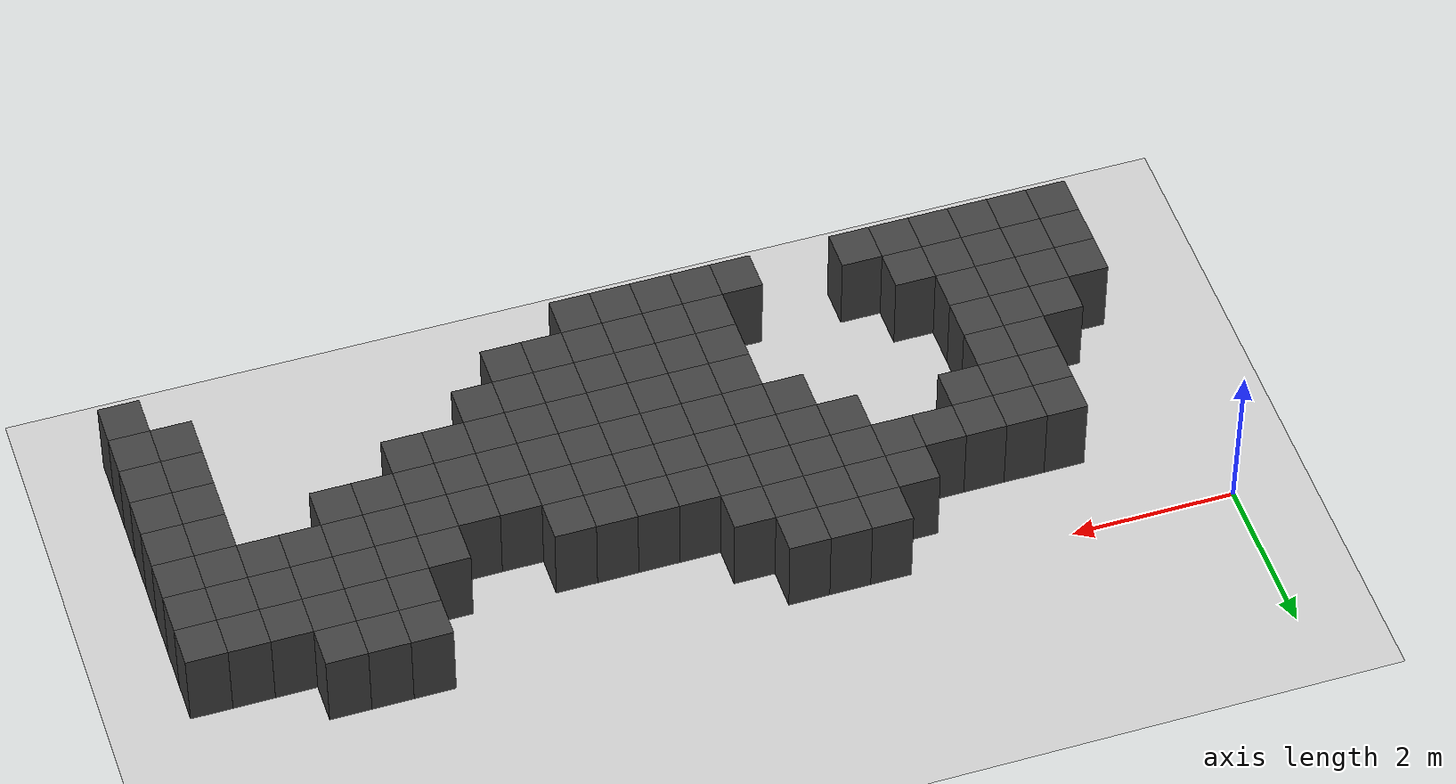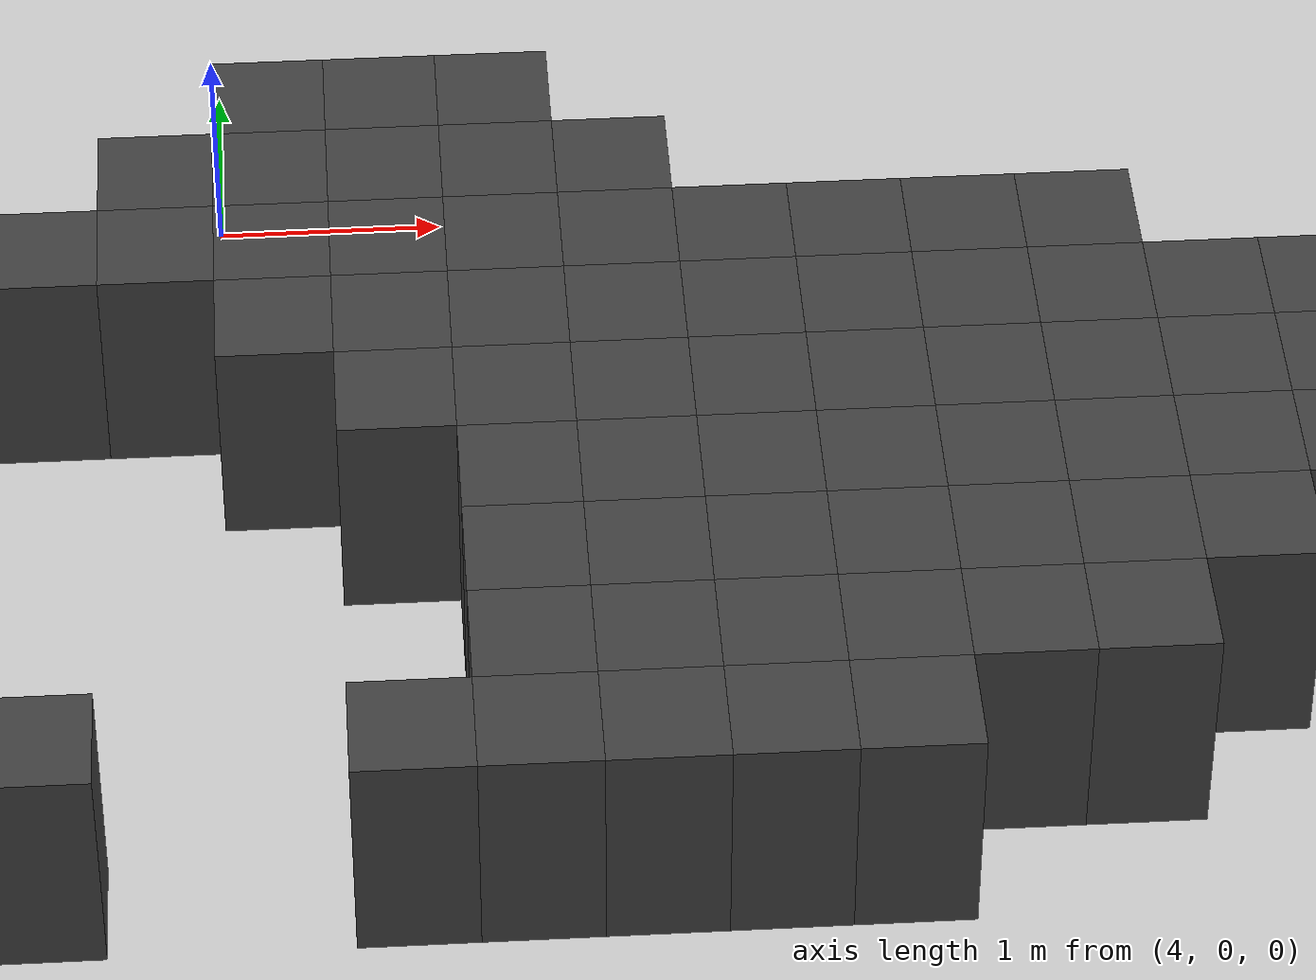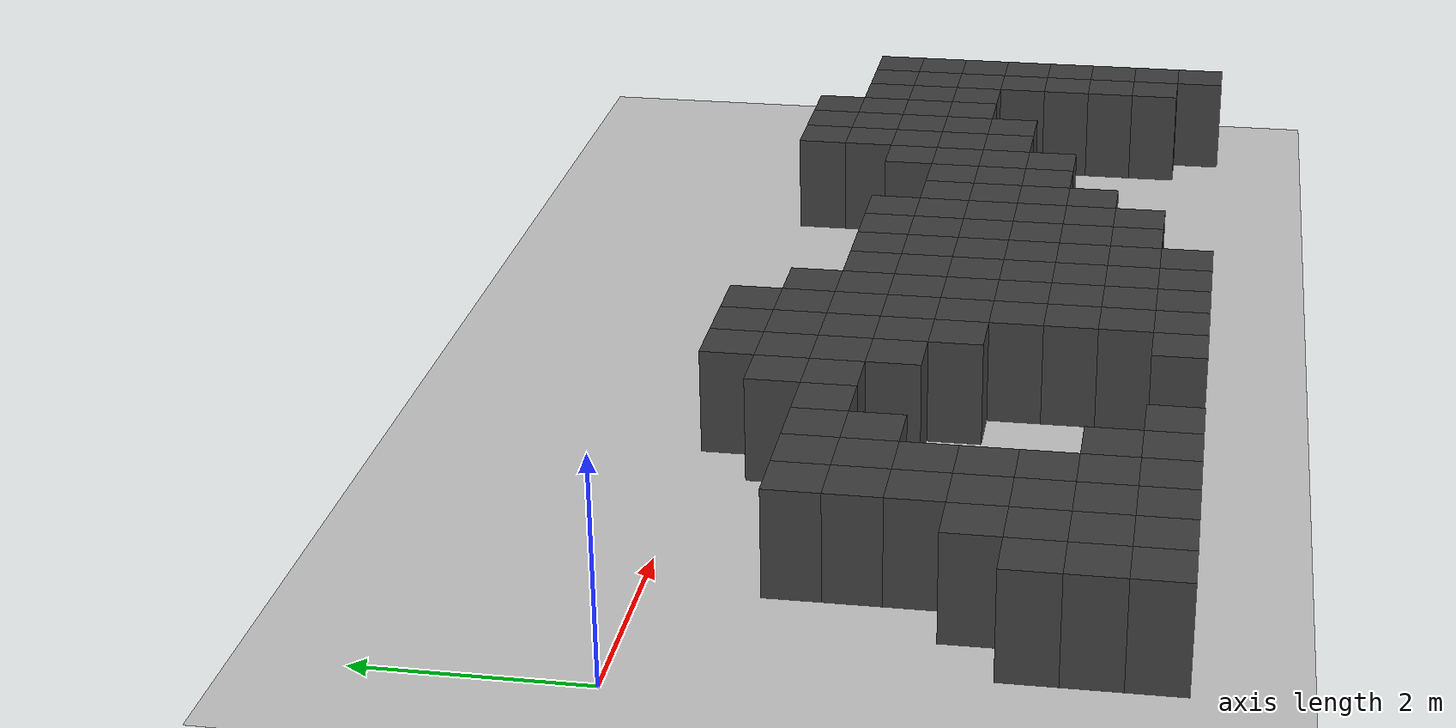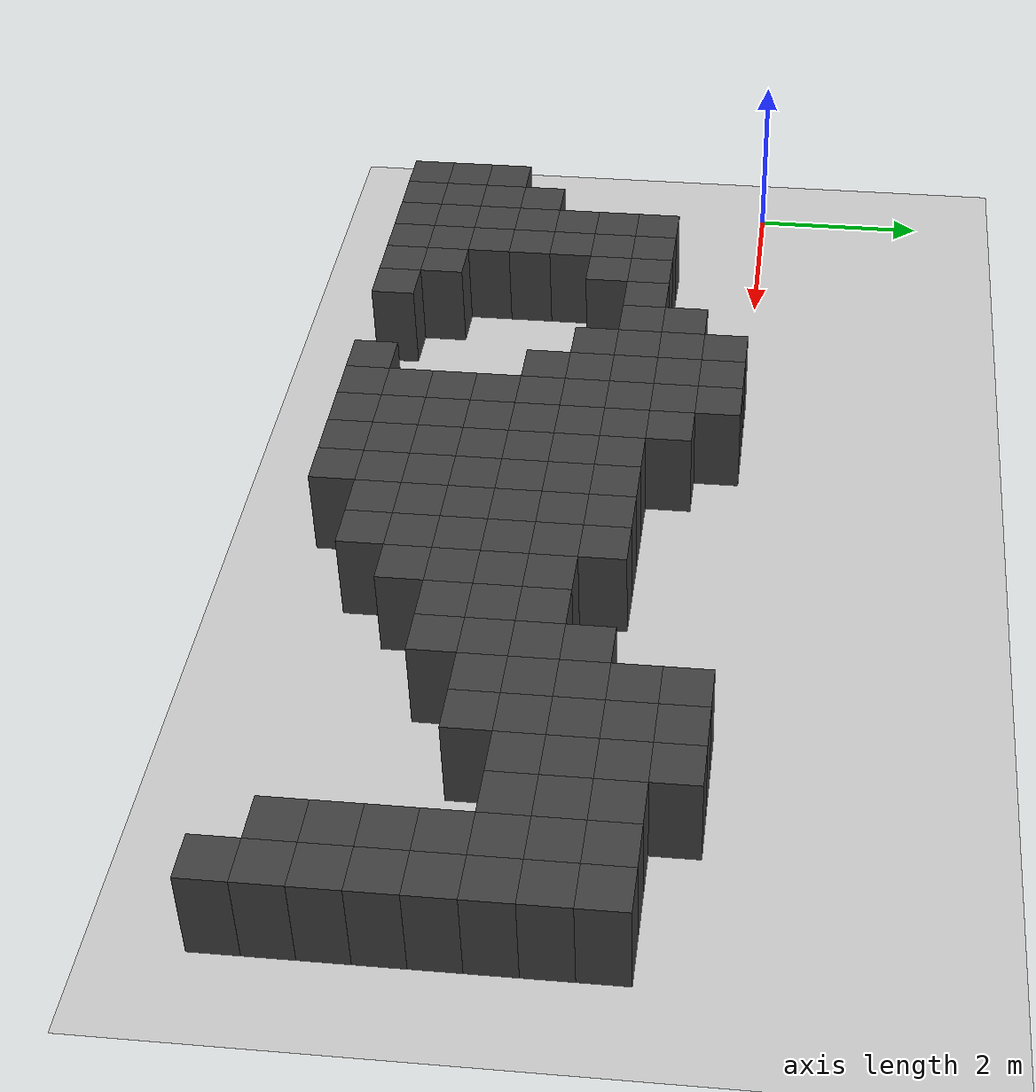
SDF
<sdf version="1.7">
 <world name="map_9687">
  <model name="ground_plane">
   <static>true</static>
   <link name="link">
    <collision name="collision">
     <geometry><plane><normal>0 0 1</normal><size>200 200</size></plane></geometry>
    </collision>
    <visual name="visual">
     <geometry><plane><normal>0 0 1</normal><size>200 200</size></plane></geometry>
     <material><ambient>0.8 0.8 0.8 1</ambient><diffuse>0.8 0.8 0.8 1</diffuse></material>
    </visual>
   </link>
  </model>
  <model name="maze_environment">
   <static>true</static>
   <link name="wall_449">
    <pose>4.250 -0.250 0.500 0 0 0</pose>
    <collision name="col"><geometry><box><size>0.5 0.5 1.0</size></box></geometry></collision>
    <visual name="vis">
     <geometry><box><size>0.5 0.5 1.0</size></box></geometry>
     <material><ambient>0.15 0.15 0.15 1</ambient><diffuse>0.25 0.25 0.25 1</diffuse></material>
    </visual>
   </link>
   <link name="wall_450">
    <pose>4.750 -0.250 0.500 0 0 0</pose>
    <collision name="col"><geometry><box><size>0.5 0.5 1.0</size></box></geometry></collision>
    <visual name="vis">
     <geometry><box><size>0.5 0.5 1.0</size></box></geometry>
     <material><ambient>0.15 0.15 0.15 1</ambient><diffuse>0.25 0.25 0.25 1</diffuse></material>
    </visual>
   </link>
   <link name="wall_451">
    <pose>5.250 -0.250 0.500 0 0 0</pose>
    <collision name="col"><geometry><box><size>0.5 0.5 1.0</size></box></geometry></collision>
    <visual name="vis">
     <geometry><box><size>0.5 0.5 1.0</size></box></geometry>
     <material><ambient>0.15 0.15 0.15 1</ambient><diffuse>0.25 0.25 0.25 1</diffuse></material>
    </visual>
   </link>
   <link name="wall_452">
    <pose>9.750 -0.250 0.500 0 0 0</pose>
    <collision name="col"><geometry><box><size>0.5 0.5 1.0</size></box></geometry></collision>
    <visual name="vis">
     <geometry><box><size>0.5 0.5 1.0</size></box></geometry>
     <material><ambient>0.15 0.15 0.15 1</ambient><diffuse>0.25 0.25 0.25 1</diffuse></material>
    </visual>
   </link>
   <link name="wall_453">
    <pose>10.250 -0.250 0.500 0 0 0</pose>
    <collision name="col"><geometry><box><size>0.5 0.5 1.0</size></box></geometry></collision>
    <visual name="vis">
     <geometry><box><size>0.5 0.5 1.0</size></box></geometry>
     <material><ambient>0.15 0.15 0.15 1</ambient><diffuse>0.25 0.25 0.25 1</diffuse></material>
    </visual>
   </link>
   <link name="wall_454">
    <pose>10.750 -0.250 0.500 0 0 0</pose>
    <collision name="col"><geometry><box><size>0.5 0.5 1.0</size></box></geometry></collision>
    <visual name="vis">
     <geometry><box><size>0.5 0.5 1.0</size></box></geometry>
     <material><ambient>0.15 0.15 0.15 1</ambient><diffuse>0.25 0.25 0.25 1</diffuse></material>
    </visual>
   </link>
   <link name="wall_471">
    <pose>3.750 -0.750 0.500 0 0 0</pose>
    <collision name="col"><geometry><box><size>0.5 0.5 1.0</size></box></geometry></collision>
    <visual name="vis">
     <geometry><box><size>0.5 0.5 1.0</size></box></geometry>
     <material><ambient>0.15 0.15 0.15 1</ambient><diffuse>0.25 0.25 0.25 1</diffuse></material>
    </visual>
   </link>
   <link name="wall_472">
    <pose>4.250 -0.750 0.500 0 0 0</pose>
    <collision name="col"><geometry><box><size>0.5 0.5 1.0</size></box></geometry></collision>
    <visual name="vis">
     <geometry><box><size>0.5 0.5 1.0</size></box></geometry>
     <material><ambient>0.15 0.15 0.15 1</ambient><diffuse>0.25 0.25 0.25 1</diffuse></material>
    </visual>
   </link>
   <link name="wall_473">
    <pose>4.750 -0.750 0.500 0 0 0</pose>
    <collision name="col"><geometry><box><size>0.5 0.5 1.0</size></box></geometry></collision>
    <visual name="vis">
     <geometry><box><size>0.5 0.5 1.0</size></box></geometry>
     <material><ambient>0.15 0.15 0.15 1</ambient><diffuse>0.25 0.25 0.25 1</diffuse></material>
    </visual>
   </link>
   <link name="wall_474">
    <pose>5.250 -0.750 0.500 0 0 0</pose>
    <collision name="col"><geometry><box><size>0.5 0.5 1.0</size></box></geometry></collision>
    <visual name="vis">
     <geometry><box><size>0.5 0.5 1.0</size></box></geometry>
     <material><ambient>0.15 0.15 0.15 1</ambient><diffuse>0.25 0.25 0.25 1</diffuse></material>
    </visual>
   </link>
   <link name="wall_475">
    <pose>5.750 -0.750 0.500 0 0 0</pose>
    <collision name="col"><geometry><box><size>0.5 0.5 1.0</size></box></geometry></collision>
    <visual name="vis">
     <geometry><box><size>0.5 0.5 1.0</size></box></geometry>
     <material><ambient>0.15 0.15 0.15 1</ambient><diffuse>0.25 0.25 0.25 1</diffuse></material>
    </visual>
   </link>
   <link name="wall_476">
    <pose>9.750 -0.750 0.500 0 0 0</pose>
    <collision name="col"><geometry><box><size>0.5 0.5 1.0</size></box></geometry></collision>
    <visual name="vis">
     <geometry><box><size>0.5 0.5 1.0</size></box></geometry>
     <material><ambient>0.15 0.15 0.15 1</ambient><diffuse>0.25 0.25 0.25 1</diffuse></material>
    </visual>
   </link>
   <link name="wall_477">
    <pose>10.250 -0.750 0.500 0 0 0</pose>
    <collision name="col"><geometry><box><size>0.5 0.5 1.0</size></box></geometry></collision>
    <visual name="vis">
     <geometry><box><size>0.5 0.5 1.0</size></box></geometry>
     <material><ambient>0.15 0.15 0.15 1</ambient><diffuse>0.25 0.25 0.25 1</diffuse></material>
    </visual>
   </link>
   <link name="wall_478">
    <pose>10.750 -0.750 0.500 0 0 0</pose>
    <collision name="col"><geometry><box><size>0.5 0.5 1.0</size></box></geometry></collision>
    <visual name="vis">
     <geometry><box><size>0.5 0.5 1.0</size></box></geometry>
     <material><ambient>0.15 0.15 0.15 1</ambient><diffuse>0.25 0.25 0.25 1</diffuse></material>
    </visual>
   </link>
   <link name="wall_479">
    <pose>11.250 -0.750 0.500 0 0 0</pose>
    <collision name="col"><geometry><box><size>0.5 0.5 1.0</size></box></geometry></collision>
    <visual name="vis">
     <geometry><box><size>0.5 0.5 1.0</size></box></geometry>
     <material><ambient>0.15 0.15 0.15 1</ambient><diffuse>0.25 0.25 0.25 1</diffuse></material>
    </visual>
   </link>
   <link name="wall_480">
    <pose>11.750 -0.750 0.500 0 0 0</pose>
    <collision name="col"><geometry><box><size>0.5 0.5 1.0</size></box></geometry></collision>
    <visual name="vis">
     <geometry><box><size>0.5 0.5 1.0</size></box></geometry>
     <material><ambient>0.15 0.15 0.15 1</ambient><diffuse>0.25 0.25 0.25 1</diffuse></material>
    </visual>
   </link>
   <link name="wall_481">
    <pose>12.250 -0.750 0.500 0 0 0</pose>
    <collision name="col"><geometry><box><size>0.5 0.5 1.0</size></box></geometry></collision>
    <visual name="vis">
     <geometry><box><size>0.5 0.5 1.0</size></box></geometry>
     <material><ambient>0.15 0.15 0.15 1</ambient><diffuse>0.25 0.25 0.25 1</diffuse></material>
    </visual>
   </link>
   <link name="wall_494">
    <pose>1.750 -1.250 0.500 0 0 0</pose>
    <collision name="col"><geometry><box><size>0.5 0.5 1.0</size></box></geometry></collision>
    <visual name="vis">
     <geometry><box><size>0.5 0.5 1.0</size></box></geometry>
     <material><ambient>0.15 0.15 0.15 1</ambient><diffuse>0.25 0.25 0.25 1</diffuse></material>
    </visual>
   </link>
   <link name="wall_495">
    <pose>2.250 -1.250 0.500 0 0 0</pose>
    <collision name="col"><geometry><box><size>0.5 0.5 1.0</size></box></geometry></collision>
    <visual name="vis">
     <geometry><box><size>0.5 0.5 1.0</size></box></geometry>
     <material><ambient>0.15 0.15 0.15 1</ambient><diffuse>0.25 0.25 0.25 1</diffuse></material>
    </visual>
   </link>
   <link name="wall_496">
    <pose>2.750 -1.250 0.500 0 0 0</pose>
    <collision name="col"><geometry><box><size>0.5 0.5 1.0</size></box></geometry></collision>
    <visual name="vis">
     <geometry><box><size>0.5 0.5 1.0</size></box></geometry>
     <material><ambient>0.15 0.15 0.15 1</ambient><diffuse>0.25 0.25 0.25 1</diffuse></material>
    </visual>
   </link>
   <link name="wall_497">
    <pose>3.250 -1.250 0.500 0 0 0</pose>
    <collision name="col"><geometry><box><size>0.5 0.5 1.0</size></box></geometry></collision>
    <visual name="vis">
     <geometry><box><size>0.5 0.5 1.0</size></box></geometry>
     <material><ambient>0.15 0.15 0.15 1</ambient><diffuse>0.25 0.25 0.25 1</diffuse></material>
    </visual>
   </link>
   <link name="wall_498">
    <pose>3.750 -1.250 0.500 0 0 0</pose>
    <collision name="col"><geometry><box><size>0.5 0.5 1.0</size></box></geometry></collision>
    <visual name="vis">
     <geometry><box><size>0.5 0.5 1.0</size></box></geometry>
     <material><ambient>0.15 0.15 0.15 1</ambient><diffuse>0.25 0.25 0.25 1</diffuse></material>
    </visual>
   </link>
   <link name="wall_499">
    <pose>4.250 -1.250 0.500 0 0 0</pose>
    <collision name="col"><geometry><box><size>0.5 0.5 1.0</size></box></geometry></collision>
    <visual name="vis">
     <geometry><box><size>0.5 0.5 1.0</size></box></geometry>
     <material><ambient>0.15 0.15 0.15 1</ambient><diffuse>0.25 0.25 0.25 1</diffuse></material>
    </visual>
   </link>
   <link name="wall_500">
    <pose>4.750 -1.250 0.500 0 0 0</pose>
    <collision name="col"><geometry><box><size>0.5 0.5 1.0</size></box></geometry></collision>
    <visual name="vis">
     <geometry><box><size>0.5 0.5 1.0</size></box></geometry>
     <material><ambient>0.15 0.15 0.15 1</ambient><diffuse>0.25 0.25 0.25 1</diffuse></material>
    </visual>
   </link>
   <link name="wall_501">
    <pose>5.250 -1.250 0.500 0 0 0</pose>
    <collision name="col"><geometry><box><size>0.5 0.5 1.0</size></box></geometry></collision>
    <visual name="vis">
     <geometry><box><size>0.5 0.5 1.0</size></box></geometry>
     <material><ambient>0.15 0.15 0.15 1</ambient><diffuse>0.25 0.25 0.25 1</diffuse></material>
    </visual>
   </link>
   <link name="wall_502">
    <pose>5.750 -1.250 0.500 0 0 0</pose>
    <collision name="col"><geometry><box><size>0.5 0.5 1.0</size></box></geometry></collision>
    <visual name="vis">
     <geometry><box><size>0.5 0.5 1.0</size></box></geometry>
     <material><ambient>0.15 0.15 0.15 1</ambient><diffuse>0.25 0.25 0.25 1</diffuse></material>
    </visual>
   </link>
   <link name="wall_503">
    <pose>6.250 -1.250 0.500 0 0 0</pose>
    <collision name="col"><geometry><box><size>0.5 0.5 1.0</size></box></geometry></collision>
    <visual name="vis">
     <geometry><box><size>0.5 0.5 1.0</size></box></geometry>
     <material><ambient>0.15 0.15 0.15 1</ambient><diffuse>0.25 0.25 0.25 1</diffuse></material>
    </visual>
   </link>
   <link name="wall_504">
    <pose>6.750 -1.250 0.500 0 0 0</pose>
    <collision name="col"><geometry><box><size>0.5 0.5 1.0</size></box></geometry></collision>
    <visual name="vis">
     <geometry><box><size>0.5 0.5 1.0</size></box></geometry>
     <material><ambient>0.15 0.15 0.15 1</ambient><diffuse>0.25 0.25 0.25 1</diffuse></material>
    </visual>
   </link>
   <link name="wall_505">
    <pose>7.250 -1.250 0.500 0 0 0</pose>
    <collision name="col"><geometry><box><size>0.5 0.5 1.0</size></box></geometry></collision>
    <visual name="vis">
     <geometry><box><size>0.5 0.5 1.0</size></box></geometry>
     <material><ambient>0.15 0.15 0.15 1</ambient><diffuse>0.25 0.25 0.25 1</diffuse></material>
    </visual>
   </link>
   <link name="wall_506">
    <pose>7.750 -1.250 0.500 0 0 0</pose>
    <collision name="col"><geometry><box><size>0.5 0.5 1.0</size></box></geometry></collision>
    <visual name="vis">
     <geometry><box><size>0.5 0.5 1.0</size></box></geometry>
     <material><ambient>0.15 0.15 0.15 1</ambient><diffuse>0.25 0.25 0.25 1</diffuse></material>
    </visual>
   </link>
   <link name="wall_507">
    <pose>9.250 -1.250 0.500 0 0 0</pose>
    <collision name="col"><geometry><box><size>0.5 0.5 1.0</size></box></geometry></collision>
    <visual name="vis">
     <geometry><box><size>0.5 0.5 1.0</size></box></geometry>
     <material><ambient>0.15 0.15 0.15 1</ambient><diffuse>0.25 0.25 0.25 1</diffuse></material>
    </visual>
   </link>
   <link name="wall_508">
    <pose>9.750 -1.250 0.500 0 0 0</pose>
    <collision name="col"><geometry><box><size>0.5 0.5 1.0</size></box></geometry></collision>
    <visual name="vis">
     <geometry><box><size>0.5 0.5 1.0</size></box></geometry>
     <material><ambient>0.15 0.15 0.15 1</ambient><diffuse>0.25 0.25 0.25 1</diffuse></material>
    </visual>
   </link>
   <link name="wall_509">
    <pose>10.250 -1.250 0.500 0 0 0</pose>
    <collision name="col"><geometry><box><size>0.5 0.5 1.0</size></box></geometry></collision>
    <visual name="vis">
     <geometry><box><size>0.5 0.5 1.0</size></box></geometry>
     <material><ambient>0.15 0.15 0.15 1</ambient><diffuse>0.25 0.25 0.25 1</diffuse></material>
    </visual>
   </link>
   <link name="wall_510">
    <pose>10.750 -1.250 0.500 0 0 0</pose>
    <collision name="col"><geometry><box><size>0.5 0.5 1.0</size></box></geometry></collision>
    <visual name="vis">
     <geometry><box><size>0.5 0.5 1.0</size></box></geometry>
     <material><ambient>0.15 0.15 0.15 1</ambient><diffuse>0.25 0.25 0.25 1</diffuse></material>
    </visual>
   </link>
   <link name="wall_511">
    <pose>11.250 -1.250 0.500 0 0 0</pose>
    <collision name="col"><geometry><box><size>0.5 0.5 1.0</size></box></geometry></collision>
    <visual name="vis">
     <geometry><box><size>0.5 0.5 1.0</size></box></geometry>
     <material><ambient>0.15 0.15 0.15 1</ambient><diffuse>0.25 0.25 0.25 1</diffuse></material>
    </visual>
   </link>
   <link name="wall_512">
    <pose>11.750 -1.250 0.500 0 0 0</pose>
    <collision name="col"><geometry><box><size>0.5 0.5 1.0</size></box></geometry></collision>
    <visual name="vis">
     <geometry><box><size>0.5 0.5 1.0</size></box></geometry>
     <material><ambient>0.15 0.15 0.15 1</ambient><diffuse>0.25 0.25 0.25 1</diffuse></material>
    </visual>
   </link>
   <link name="wall_513">
    <pose>12.250 -1.250 0.500 0 0 0</pose>
    <collision name="col"><geometry><box><size>0.5 0.5 1.0</size></box></geometry></collision>
    <visual name="vis">
     <geometry><box><size>0.5 0.5 1.0</size></box></geometry>
     <material><ambient>0.15 0.15 0.15 1</ambient><diffuse>0.25 0.25 0.25 1</diffuse></material>
    </visual>
   </link>
   <link name="wall_526">
    <pose>1.750 -1.750 0.500 0 0 0</pose>
    <collision name="col"><geometry><box><size>0.5 0.5 1.0</size></box></geometry></collision>
    <visual name="vis">
     <geometry><box><size>0.5 0.5 1.0</size></box></geometry>
     <material><ambient>0.15 0.15 0.15 1</ambient><diffuse>0.25 0.25 0.25 1</diffuse></material>
    </visual>
   </link>
   <link name="wall_527">
    <pose>2.250 -1.750 0.500 0 0 0</pose>
    <collision name="col"><geometry><box><size>0.5 0.5 1.0</size></box></geometry></collision>
    <visual name="vis">
     <geometry><box><size>0.5 0.5 1.0</size></box></geometry>
     <material><ambient>0.15 0.15 0.15 1</ambient><diffuse>0.25 0.25 0.25 1</diffuse></material>
    </visual>
   </link>
   <link name="wall_528">
    <pose>2.750 -1.750 0.500 0 0 0</pose>
    <collision name="col"><geometry><box><size>0.5 0.5 1.0</size></box></geometry></collision>
    <visual name="vis">
     <geometry><box><size>0.5 0.5 1.0</size></box></geometry>
     <material><ambient>0.15 0.15 0.15 1</ambient><diffuse>0.25 0.25 0.25 1</diffuse></material>
    </visual>
   </link>
   <link name="wall_529">
    <pose>4.250 -1.750 0.500 0 0 0</pose>
    <collision name="col"><geometry><box><size>0.5 0.5 1.0</size></box></geometry></collision>
    <visual name="vis">
     <geometry><box><size>0.5 0.5 1.0</size></box></geometry>
     <material><ambient>0.15 0.15 0.15 1</ambient><diffuse>0.25 0.25 0.25 1</diffuse></material>
    </visual>
   </link>
   <link name="wall_530">
    <pose>4.750 -1.750 0.500 0 0 0</pose>
    <collision name="col"><geometry><box><size>0.5 0.5 1.0</size></box></geometry></collision>
    <visual name="vis">
     <geometry><box><size>0.5 0.5 1.0</size></box></geometry>
     <material><ambient>0.15 0.15 0.15 1</ambient><diffuse>0.25 0.25 0.25 1</diffuse></material>
    </visual>
   </link>
   <link name="wall_531">
    <pose>5.250 -1.750 0.500 0 0 0</pose>
    <collision name="col"><geometry><box><size>0.5 0.5 1.0</size></box></geometry></collision>
    <visual name="vis">
     <geometry><box><size>0.5 0.5 1.0</size></box></geometry>
     <material><ambient>0.15 0.15 0.15 1</ambient><diffuse>0.25 0.25 0.25 1</diffuse></material>
    </visual>
   </link>
   <link name="wall_532">
    <pose>5.750 -1.750 0.500 0 0 0</pose>
    <collision name="col"><geometry><box><size>0.5 0.5 1.0</size></box></geometry></collision>
    <visual name="vis">
     <geometry><box><size>0.5 0.5 1.0</size></box></geometry>
     <material><ambient>0.15 0.15 0.15 1</ambient><diffuse>0.25 0.25 0.25 1</diffuse></material>
    </visual>
   </link>
   <link name="wall_533">
    <pose>6.250 -1.750 0.500 0 0 0</pose>
    <collision name="col"><geometry><box><size>0.5 0.5 1.0</size></box></geometry></collision>
    <visual name="vis">
     <geometry><box><size>0.5 0.5 1.0</size></box></geometry>
     <material><ambient>0.15 0.15 0.15 1</ambient><diffuse>0.25 0.25 0.25 1</diffuse></material>
    </visual>
   </link>
   <link name="wall_534">
    <pose>6.750 -1.750 0.500 0 0 0</pose>
    <collision name="col"><geometry><box><size>0.5 0.5 1.0</size></box></geometry></collision>
    <visual name="vis">
     <geometry><box><size>0.5 0.5 1.0</size></box></geometry>
     <material><ambient>0.15 0.15 0.15 1</ambient><diffuse>0.25 0.25 0.25 1</diffuse></material>
    </visual>
   </link>
   <link name="wall_535">
    <pose>7.250 -1.750 0.500 0 0 0</pose>
    <collision name="col"><geometry><box><size>0.5 0.5 1.0</size></box></geometry></collision>
    <visual name="vis">
     <geometry><box><size>0.5 0.5 1.0</size></box></geometry>
     <material><ambient>0.15 0.15 0.15 1</ambient><diffuse>0.25 0.25 0.25 1</diffuse></material>
    </visual>
   </link>
   <link name="wall_536">
    <pose>7.750 -1.750 0.500 0 0 0</pose>
    <collision name="col"><geometry><box><size>0.5 0.5 1.0</size></box></geometry></collision>
    <visual name="vis">
     <geometry><box><size>0.5 0.5 1.0</size></box></geometry>
     <material><ambient>0.15 0.15 0.15 1</ambient><diffuse>0.25 0.25 0.25 1</diffuse></material>
    </visual>
   </link>
   <link name="wall_537">
    <pose>8.250 -1.750 0.500 0 0 0</pose>
    <collision name="col"><geometry><box><size>0.5 0.5 1.0</size></box></geometry></collision>
    <visual name="vis">
     <geometry><box><size>0.5 0.5 1.0</size></box></geometry>
     <material><ambient>0.15 0.15 0.15 1</ambient><diffuse>0.25 0.25 0.25 1</diffuse></material>
    </visual>
   </link>
   <link name="wall_538">
    <pose>8.750 -1.750 0.500 0 0 0</pose>
    <collision name="col"><geometry><box><size>0.5 0.5 1.0</size></box></geometry></collision>
    <visual name="vis">
     <geometry><box><size>0.5 0.5 1.0</size></box></geometry>
     <material><ambient>0.15 0.15 0.15 1</ambient><diffuse>0.25 0.25 0.25 1</diffuse></material>
    </visual>
   </link>
   <link name="wall_539">
    <pose>9.250 -1.750 0.500 0 0 0</pose>
    <collision name="col"><geometry><box><size>0.5 0.5 1.0</size></box></geometry></collision>
    <visual name="vis">
     <geometry><box><size>0.5 0.5 1.0</size></box></geometry>
     <material><ambient>0.15 0.15 0.15 1</ambient><diffuse>0.25 0.25 0.25 1</diffuse></material>
    </visual>
   </link>
   <link name="wall_540">
    <pose>9.750 -1.750 0.500 0 0 0</pose>
    <collision name="col"><geometry><box><size>0.5 0.5 1.0</size></box></geometry></collision>
    <visual name="vis">
     <geometry><box><size>0.5 0.5 1.0</size></box></geometry>
     <material><ambient>0.15 0.15 0.15 1</ambient><diffuse>0.25 0.25 0.25 1</diffuse></material>
    </visual>
   </link>
   <link name="wall_541">
    <pose>10.250 -1.750 0.500 0 0 0</pose>
    <collision name="col"><geometry><box><size>0.5 0.5 1.0</size></box></geometry></collision>
    <visual name="vis">
     <geometry><box><size>0.5 0.5 1.0</size></box></geometry>
     <material><ambient>0.15 0.15 0.15 1</ambient><diffuse>0.25 0.25 0.25 1</diffuse></material>
    </visual>
   </link>
   <link name="wall_542">
    <pose>10.750 -1.750 0.500 0 0 0</pose>
    <collision name="col"><geometry><box><size>0.5 0.5 1.0</size></box></geometry></collision>
    <visual name="vis">
     <geometry><box><size>0.5 0.5 1.0</size></box></geometry>
     <material><ambient>0.15 0.15 0.15 1</ambient><diffuse>0.25 0.25 0.25 1</diffuse></material>
    </visual>
   </link>
   <link name="wall_543">
    <pose>11.250 -1.750 0.500 0 0 0</pose>
    <collision name="col"><geometry><box><size>0.5 0.5 1.0</size></box></geometry></collision>
    <visual name="vis">
     <geometry><box><size>0.5 0.5 1.0</size></box></geometry>
     <material><ambient>0.15 0.15 0.15 1</ambient><diffuse>0.25 0.25 0.25 1</diffuse></material>
    </visual>
   </link>
   <link name="wall_544">
    <pose>11.750 -1.750 0.500 0 0 0</pose>
    <collision name="col"><geometry><box><size>0.5 0.5 1.0</size></box></geometry></collision>
    <visual name="vis">
     <geometry><box><size>0.5 0.5 1.0</size></box></geometry>
     <material><ambient>0.15 0.15 0.15 1</ambient><diffuse>0.25 0.25 0.25 1</diffuse></material>
    </visual>
   </link>
   <link name="wall_545">
    <pose>12.250 -1.750 0.500 0 0 0</pose>
    <collision name="col"><geometry><box><size>0.5 0.5 1.0</size></box></geometry></collision>
    <visual name="vis">
     <geometry><box><size>0.5 0.5 1.0</size></box></geometry>
     <material><ambient>0.15 0.15 0.15 1</ambient><diffuse>0.25 0.25 0.25 1</diffuse></material>
    </visual>
   </link>
   <link name="wall_558">
    <pose>1.750 -2.250 0.500 0 0 0</pose>
    <collision name="col"><geometry><box><size>0.5 0.5 1.0</size></box></geometry></collision>
    <visual name="vis">
     <geometry><box><size>0.5 0.5 1.0</size></box></geometry>
     <material><ambient>0.15 0.15 0.15 1</ambient><diffuse>0.25 0.25 0.25 1</diffuse></material>
    </visual>
   </link>
   <link name="wall_559">
    <pose>2.250 -2.250 0.500 0 0 0</pose>
    <collision name="col"><geometry><box><size>0.5 0.5 1.0</size></box></geometry></collision>
    <visual name="vis">
     <geometry><box><size>0.5 0.5 1.0</size></box></geometry>
     <material><ambient>0.15 0.15 0.15 1</ambient><diffuse>0.25 0.25 0.25 1</diffuse></material>
    </visual>
   </link>
   <link name="wall_560">
    <pose>4.750 -2.250 0.500 0 0 0</pose>
    <collision name="col"><geometry><box><size>0.5 0.5 1.0</size></box></geometry></collision>
    <visual name="vis">
     <geometry><box><size>0.5 0.5 1.0</size></box></geometry>
     <material><ambient>0.15 0.15 0.15 1</ambient><diffuse>0.25 0.25 0.25 1</diffuse></material>
    </visual>
   </link>
   <link name="wall_561">
    <pose>5.250 -2.250 0.500 0 0 0</pose>
    <collision name="col"><geometry><box><size>0.5 0.5 1.0</size></box></geometry></collision>
    <visual name="vis">
     <geometry><box><size>0.5 0.5 1.0</size></box></geometry>
     <material><ambient>0.15 0.15 0.15 1</ambient><diffuse>0.25 0.25 0.25 1</diffuse></material>
    </visual>
   </link>
   <link name="wall_562">
    <pose>5.750 -2.250 0.500 0 0 0</pose>
    <collision name="col"><geometry><box><size>0.5 0.5 1.0</size></box></geometry></collision>
    <visual name="vis">
     <geometry><box><size>0.5 0.5 1.0</size></box></geometry>
     <material><ambient>0.15 0.15 0.15 1</ambient><diffuse>0.25 0.25 0.25 1</diffuse></material>
    </visual>
   </link>
   <link name="wall_563">
    <pose>6.250 -2.250 0.500 0 0 0</pose>
    <collision name="col"><geometry><box><size>0.5 0.5 1.0</size></box></geometry></collision>
    <visual name="vis">
     <geometry><box><size>0.5 0.5 1.0</size></box></geometry>
     <material><ambient>0.15 0.15 0.15 1</ambient><diffuse>0.25 0.25 0.25 1</diffuse></material>
    </visual>
   </link>
   <link name="wall_564">
    <pose>6.750 -2.250 0.500 0 0 0</pose>
    <collision name="col"><geometry><box><size>0.5 0.5 1.0</size></box></geometry></collision>
    <visual name="vis">
     <geometry><box><size>0.5 0.5 1.0</size></box></geometry>
     <material><ambient>0.15 0.15 0.15 1</ambient><diffuse>0.25 0.25 0.25 1</diffuse></material>
    </visual>
   </link>
   <link name="wall_565">
    <pose>7.250 -2.250 0.500 0 0 0</pose>
    <collision name="col"><geometry><box><size>0.5 0.5 1.0</size></box></geometry></collision>
    <visual name="vis">
     <geometry><box><size>0.5 0.5 1.0</size></box></geometry>
     <material><ambient>0.15 0.15 0.15 1</ambient><diffuse>0.25 0.25 0.25 1</diffuse></material>
    </visual>
   </link>
   <link name="wall_566">
    <pose>7.750 -2.250 0.500 0 0 0</pose>
    <collision name="col"><geometry><box><size>0.5 0.5 1.0</size></box></geometry></collision>
    <visual name="vis">
     <geometry><box><size>0.5 0.5 1.0</size></box></geometry>
     <material><ambient>0.15 0.15 0.15 1</ambient><diffuse>0.25 0.25 0.25 1</diffuse></material>
    </visual>
   </link>
   <link name="wall_567">
    <pose>8.250 -2.250 0.500 0 0 0</pose>
    <collision name="col"><geometry><box><size>0.5 0.5 1.0</size></box></geometry></collision>
    <visual name="vis">
     <geometry><box><size>0.5 0.5 1.0</size></box></geometry>
     <material><ambient>0.15 0.15 0.15 1</ambient><diffuse>0.25 0.25 0.25 1</diffuse></material>
    </visual>
   </link>
   <link name="wall_568">
    <pose>8.750 -2.250 0.500 0 0 0</pose>
    <collision name="col"><geometry><box><size>0.5 0.5 1.0</size></box></geometry></collision>
    <visual name="vis">
     <geometry><box><size>0.5 0.5 1.0</size></box></geometry>
     <material><ambient>0.15 0.15 0.15 1</ambient><diffuse>0.25 0.25 0.25 1</diffuse></material>
    </visual>
   </link>
   <link name="wall_569">
    <pose>9.250 -2.250 0.500 0 0 0</pose>
    <collision name="col"><geometry><box><size>0.5 0.5 1.0</size></box></geometry></collision>
    <visual name="vis">
     <geometry><box><size>0.5 0.5 1.0</size></box></geometry>
     <material><ambient>0.15 0.15 0.15 1</ambient><diffuse>0.25 0.25 0.25 1</diffuse></material>
    </visual>
   </link>
   <link name="wall_570">
    <pose>9.750 -2.250 0.500 0 0 0</pose>
    <collision name="col"><geometry><box><size>0.5 0.5 1.0</size></box></geometry></collision>
    <visual name="vis">
     <geometry><box><size>0.5 0.5 1.0</size></box></geometry>
     <material><ambient>0.15 0.15 0.15 1</ambient><diffuse>0.25 0.25 0.25 1</diffuse></material>
    </visual>
   </link>
   <link name="wall_571">
    <pose>10.250 -2.250 0.500 0 0 0</pose>
    <collision name="col"><geometry><box><size>0.5 0.5 1.0</size></box></geometry></collision>
    <visual name="vis">
     <geometry><box><size>0.5 0.5 1.0</size></box></geometry>
     <material><ambient>0.15 0.15 0.15 1</ambient><diffuse>0.25 0.25 0.25 1</diffuse></material>
    </visual>
   </link>
   <link name="wall_572">
    <pose>11.750 -2.250 0.500 0 0 0</pose>
    <collision name="col"><geometry><box><size>0.5 0.5 1.0</size></box></geometry></collision>
    <visual name="vis">
     <geometry><box><size>0.5 0.5 1.0</size></box></geometry>
     <material><ambient>0.15 0.15 0.15 1</ambient><diffuse>0.25 0.25 0.25 1</diffuse></material>
    </visual>
   </link>
   <link name="wall_573">
    <pose>12.250 -2.250 0.500 0 0 0</pose>
    <collision name="col"><geometry><box><size>0.5 0.5 1.0</size></box></geometry></collision>
    <visual name="vis">
     <geometry><box><size>0.5 0.5 1.0</size></box></geometry>
     <material><ambient>0.15 0.15 0.15 1</ambient><diffuse>0.25 0.25 0.25 1</diffuse></material>
    </visual>
   </link>
   <link name="wall_588">
    <pose>1.250 -2.750 0.500 0 0 0</pose>
    <collision name="col"><geometry><box><size>0.5 0.5 1.0</size></box></geometry></collision>
    <visual name="vis">
     <geometry><box><size>0.5 0.5 1.0</size></box></geometry>
     <material><ambient>0.15 0.15 0.15 1</ambient><diffuse>0.25 0.25 0.25 1</diffuse></material>
    </visual>
   </link>
   <link name="wall_589">
    <pose>1.750 -2.750 0.500 0 0 0</pose>
    <collision name="col"><geometry><box><size>0.5 0.5 1.0</size></box></geometry></collision>
    <visual name="vis">
     <geometry><box><size>0.5 0.5 1.0</size></box></geometry>
     <material><ambient>0.15 0.15 0.15 1</ambient><diffuse>0.25 0.25 0.25 1</diffuse></material>
    </visual>
   </link>
   <link name="wall_590">
    <pose>2.250 -2.750 0.500 0 0 0</pose>
    <collision name="col"><geometry><box><size>0.5 0.5 1.0</size></box></geometry></collision>
    <visual name="vis">
     <geometry><box><size>0.5 0.5 1.0</size></box></geometry>
     <material><ambient>0.15 0.15 0.15 1</ambient><diffuse>0.25 0.25 0.25 1</diffuse></material>
    </visual>
   </link>
   <link name="wall_591">
    <pose>5.250 -2.750 0.500 0 0 0</pose>
    <collision name="col"><geometry><box><size>0.5 0.5 1.0</size></box></geometry></collision>
    <visual name="vis">
     <geometry><box><size>0.5 0.5 1.0</size></box></geometry>
     <material><ambient>0.15 0.15 0.15 1</ambient><diffuse>0.25 0.25 0.25 1</diffuse></material>
    </visual>
   </link>
   <link name="wall_592">
    <pose>5.750 -2.750 0.500 0 0 0</pose>
    <collision name="col"><geometry><box><size>0.5 0.5 1.0</size></box></geometry></collision>
    <visual name="vis">
     <geometry><box><size>0.5 0.5 1.0</size></box></geometry>
     <material><ambient>0.15 0.15 0.15 1</ambient><diffuse>0.25 0.25 0.25 1</diffuse></material>
    </visual>
   </link>
   <link name="wall_593">
    <pose>6.250 -2.750 0.500 0 0 0</pose>
    <collision name="col"><geometry><box><size>0.5 0.5 1.0</size></box></geometry></collision>
    <visual name="vis">
     <geometry><box><size>0.5 0.5 1.0</size></box></geometry>
     <material><ambient>0.15 0.15 0.15 1</ambient><diffuse>0.25 0.25 0.25 1</diffuse></material>
    </visual>
   </link>
   <link name="wall_594">
    <pose>6.750 -2.750 0.500 0 0 0</pose>
    <collision name="col"><geometry><box><size>0.5 0.5 1.0</size></box></geometry></collision>
    <visual name="vis">
     <geometry><box><size>0.5 0.5 1.0</size></box></geometry>
     <material><ambient>0.15 0.15 0.15 1</ambient><diffuse>0.25 0.25 0.25 1</diffuse></material>
    </visual>
   </link>
   <link name="wall_595">
    <pose>7.250 -2.750 0.500 0 0 0</pose>
    <collision name="col"><geometry><box><size>0.5 0.5 1.0</size></box></geometry></collision>
    <visual name="vis">
     <geometry><box><size>0.5 0.5 1.0</size></box></geometry>
     <material><ambient>0.15 0.15 0.15 1</ambient><diffuse>0.25 0.25 0.25 1</diffuse></material>
    </visual>
   </link>
   <link name="wall_596">
    <pose>7.750 -2.750 0.500 0 0 0</pose>
    <collision name="col"><geometry><box><size>0.5 0.5 1.0</size></box></geometry></collision>
    <visual name="vis">
     <geometry><box><size>0.5 0.5 1.0</size></box></geometry>
     <material><ambient>0.15 0.15 0.15 1</ambient><diffuse>0.25 0.25 0.25 1</diffuse></material>
    </visual>
   </link>
   <link name="wall_597">
    <pose>8.250 -2.750 0.500 0 0 0</pose>
    <collision name="col"><geometry><box><size>0.5 0.5 1.0</size></box></geometry></collision>
    <visual name="vis">
     <geometry><box><size>0.5 0.5 1.0</size></box></geometry>
     <material><ambient>0.15 0.15 0.15 1</ambient><diffuse>0.25 0.25 0.25 1</diffuse></material>
    </visual>
   </link>
   <link name="wall_598">
    <pose>8.750 -2.750 0.500 0 0 0</pose>
    <collision name="col"><geometry><box><size>0.5 0.5 1.0</size></box></geometry></collision>
    <visual name="vis">
     <geometry><box><size>0.5 0.5 1.0</size></box></geometry>
     <material><ambient>0.15 0.15 0.15 1</ambient><diffuse>0.25 0.25 0.25 1</diffuse></material>
    </visual>
   </link>
   <link name="wall_599">
    <pose>9.250 -2.750 0.500 0 0 0</pose>
    <collision name="col"><geometry><box><size>0.5 0.5 1.0</size></box></geometry></collision>
    <visual name="vis">
     <geometry><box><size>0.5 0.5 1.0</size></box></geometry>
     <material><ambient>0.15 0.15 0.15 1</ambient><diffuse>0.25 0.25 0.25 1</diffuse></material>
    </visual>
   </link>
   <link name="wall_600">
    <pose>11.750 -2.750 0.500 0 0 0</pose>
    <collision name="col"><geometry><box><size>0.5 0.5 1.0</size></box></geometry></collision>
    <visual name="vis">
     <geometry><box><size>0.5 0.5 1.0</size></box></geometry>
     <material><ambient>0.15 0.15 0.15 1</ambient><diffuse>0.25 0.25 0.25 1</diffuse></material>
    </visual>
   </link>
   <link name="wall_601">
    <pose>12.250 -2.750 0.500 0 0 0</pose>
    <collision name="col"><geometry><box><size>0.5 0.5 1.0</size></box></geometry></collision>
    <visual name="vis">
     <geometry><box><size>0.5 0.5 1.0</size></box></geometry>
     <material><ambient>0.15 0.15 0.15 1</ambient><diffuse>0.25 0.25 0.25 1</diffuse></material>
    </visual>
   </link>
   <link name="wall_617">
    <pose>0.750 -3.250 0.500 0 0 0</pose>
    <collision name="col"><geometry><box><size>0.5 0.5 1.0</size></box></geometry></collision>
    <visual name="vis">
     <geometry><box><size>0.5 0.5 1.0</size></box></geometry>
     <material><ambient>0.15 0.15 0.15 1</ambient><diffuse>0.25 0.25 0.25 1</diffuse></material>
    </visual>
   </link>
   <link name="wall_618">
    <pose>1.250 -3.250 0.500 0 0 0</pose>
    <collision name="col"><geometry><box><size>0.5 0.5 1.0</size></box></geometry></collision>
    <visual name="vis">
     <geometry><box><size>0.5 0.5 1.0</size></box></geometry>
     <material><ambient>0.15 0.15 0.15 1</ambient><diffuse>0.25 0.25 0.25 1</diffuse></material>
    </visual>
   </link>
   <link name="wall_619">
    <pose>1.750 -3.250 0.500 0 0 0</pose>
    <collision name="col"><geometry><box><size>0.5 0.5 1.0</size></box></geometry></collision>
    <visual name="vis">
     <geometry><box><size>0.5 0.5 1.0</size></box></geometry>
     <material><ambient>0.15 0.15 0.15 1</ambient><diffuse>0.25 0.25 0.25 1</diffuse></material>
    </visual>
   </link>
   <link name="wall_620">
    <pose>2.250 -3.250 0.500 0 0 0</pose>
    <collision name="col"><geometry><box><size>0.5 0.5 1.0</size></box></geometry></collision>
    <visual name="vis">
     <geometry><box><size>0.5 0.5 1.0</size></box></geometry>
     <material><ambient>0.15 0.15 0.15 1</ambient><diffuse>0.25 0.25 0.25 1</diffuse></material>
    </visual>
   </link>
   <link name="wall_621">
    <pose>5.250 -3.250 0.500 0 0 0</pose>
    <collision name="col"><geometry><box><size>0.5 0.5 1.0</size></box></geometry></collision>
    <visual name="vis">
     <geometry><box><size>0.5 0.5 1.0</size></box></geometry>
     <material><ambient>0.15 0.15 0.15 1</ambient><diffuse>0.25 0.25 0.25 1</diffuse></material>
    </visual>
   </link>
   <link name="wall_622">
    <pose>5.750 -3.250 0.500 0 0 0</pose>
    <collision name="col"><geometry><box><size>0.5 0.5 1.0</size></box></geometry></collision>
    <visual name="vis">
     <geometry><box><size>0.5 0.5 1.0</size></box></geometry>
     <material><ambient>0.15 0.15 0.15 1</ambient><diffuse>0.25 0.25 0.25 1</diffuse></material>
    </visual>
   </link>
   <link name="wall_623">
    <pose>6.250 -3.250 0.500 0 0 0</pose>
    <collision name="col"><geometry><box><size>0.5 0.5 1.0</size></box></geometry></collision>
    <visual name="vis">
     <geometry><box><size>0.5 0.5 1.0</size></box></geometry>
     <material><ambient>0.15 0.15 0.15 1</ambient><diffuse>0.25 0.25 0.25 1</diffuse></material>
    </visual>
   </link>
   <link name="wall_624">
    <pose>6.750 -3.250 0.500 0 0 0</pose>
    <collision name="col"><geometry><box><size>0.5 0.5 1.0</size></box></geometry></collision>
    <visual name="vis">
     <geometry><box><size>0.5 0.5 1.0</size></box></geometry>
     <material><ambient>0.15 0.15 0.15 1</ambient><diffuse>0.25 0.25 0.25 1</diffuse></material>
    </visual>
   </link>
   <link name="wall_625">
    <pose>7.250 -3.250 0.500 0 0 0</pose>
    <collision name="col"><geometry><box><size>0.5 0.5 1.0</size></box></geometry></collision>
    <visual name="vis">
     <geometry><box><size>0.5 0.5 1.0</size></box></geometry>
     <material><ambient>0.15 0.15 0.15 1</ambient><diffuse>0.25 0.25 0.25 1</diffuse></material>
    </visual>
   </link>
   <link name="wall_626">
    <pose>7.750 -3.250 0.500 0 0 0</pose>
    <collision name="col"><geometry><box><size>0.5 0.5 1.0</size></box></geometry></collision>
    <visual name="vis">
     <geometry><box><size>0.5 0.5 1.0</size></box></geometry>
     <material><ambient>0.15 0.15 0.15 1</ambient><diffuse>0.25 0.25 0.25 1</diffuse></material>
    </visual>
   </link>
   <link name="wall_627">
    <pose>8.250 -3.250 0.500 0 0 0</pose>
    <collision name="col"><geometry><box><size>0.5 0.5 1.0</size></box></geometry></collision>
    <visual name="vis">
     <geometry><box><size>0.5 0.5 1.0</size></box></geometry>
     <material><ambient>0.15 0.15 0.15 1</ambient><diffuse>0.25 0.25 0.25 1</diffuse></material>
    </visual>
   </link>
   <link name="wall_628">
    <pose>11.750 -3.250 0.500 0 0 0</pose>
    <collision name="col"><geometry><box><size>0.5 0.5 1.0</size></box></geometry></collision>
    <visual name="vis">
     <geometry><box><size>0.5 0.5 1.0</size></box></geometry>
     <material><ambient>0.15 0.15 0.15 1</ambient><diffuse>0.25 0.25 0.25 1</diffuse></material>
    </visual>
   </link>
   <link name="wall_629">
    <pose>12.250 -3.250 0.500 0 0 0</pose>
    <collision name="col"><geometry><box><size>0.5 0.5 1.0</size></box></geometry></collision>
    <visual name="vis">
     <geometry><box><size>0.5 0.5 1.0</size></box></geometry>
     <material><ambient>0.15 0.15 0.15 1</ambient><diffuse>0.25 0.25 0.25 1</diffuse></material>
    </visual>
   </link>
   <link name="wall_646">
    <pose>0.750 -3.750 0.500 0 0 0</pose>
    <collision name="col"><geometry><box><size>0.5 0.5 1.0</size></box></geometry></collision>
    <visual name="vis">
     <geometry><box><size>0.5 0.5 1.0</size></box></geometry>
     <material><ambient>0.15 0.15 0.15 1</ambient><diffuse>0.25 0.25 0.25 1</diffuse></material>
    </visual>
   </link>
   <link name="wall_647">
    <pose>1.250 -3.750 0.500 0 0 0</pose>
    <collision name="col"><geometry><box><size>0.5 0.5 1.0</size></box></geometry></collision>
    <visual name="vis">
     <geometry><box><size>0.5 0.5 1.0</size></box></geometry>
     <material><ambient>0.15 0.15 0.15 1</ambient><diffuse>0.25 0.25 0.25 1</diffuse></material>
    </visual>
   </link>
   <link name="wall_648">
    <pose>1.750 -3.750 0.500 0 0 0</pose>
    <collision name="col"><geometry><box><size>0.5 0.5 1.0</size></box></geometry></collision>
    <visual name="vis">
     <geometry><box><size>0.5 0.5 1.0</size></box></geometry>
     <material><ambient>0.15 0.15 0.15 1</ambient><diffuse>0.25 0.25 0.25 1</diffuse></material>
    </visual>
   </link>
   <link name="wall_649">
    <pose>2.250 -3.750 0.500 0 0 0</pose>
    <collision name="col"><geometry><box><size>0.5 0.5 1.0</size></box></geometry></collision>
    <visual name="vis">
     <geometry><box><size>0.5 0.5 1.0</size></box></geometry>
     <material><ambient>0.15 0.15 0.15 1</ambient><diffuse>0.25 0.25 0.25 1</diffuse></material>
    </visual>
   </link>
   <link name="wall_650">
    <pose>2.750 -3.750 0.500 0 0 0</pose>
    <collision name="col"><geometry><box><size>0.5 0.5 1.0</size></box></geometry></collision>
    <visual name="vis">
     <geometry><box><size>0.5 0.5 1.0</size></box></geometry>
     <material><ambient>0.15 0.15 0.15 1</ambient><diffuse>0.25 0.25 0.25 1</diffuse></material>
    </visual>
   </link>
   <link name="wall_651">
    <pose>5.250 -3.750 0.500 0 0 0</pose>
    <collision name="col"><geometry><box><size>0.5 0.5 1.0</size></box></geometry></collision>
    <visual name="vis">
     <geometry><box><size>0.5 0.5 1.0</size></box></geometry>
     <material><ambient>0.15 0.15 0.15 1</ambient><diffuse>0.25 0.25 0.25 1</diffuse></material>
    </visual>
   </link>
   <link name="wall_652">
    <pose>5.750 -3.750 0.500 0 0 0</pose>
    <collision name="col"><geometry><box><size>0.5 0.5 1.0</size></box></geometry></collision>
    <visual name="vis">
     <geometry><box><size>0.5 0.5 1.0</size></box></geometry>
     <material><ambient>0.15 0.15 0.15 1</ambient><diffuse>0.25 0.25 0.25 1</diffuse></material>
    </visual>
   </link>
   <link name="wall_653">
    <pose>6.250 -3.750 0.500 0 0 0</pose>
    <collision name="col"><geometry><box><size>0.5 0.5 1.0</size></box></geometry></collision>
    <visual name="vis">
     <geometry><box><size>0.5 0.5 1.0</size></box></geometry>
     <material><ambient>0.15 0.15 0.15 1</ambient><diffuse>0.25 0.25 0.25 1</diffuse></material>
    </visual>
   </link>
   <link name="wall_654">
    <pose>6.750 -3.750 0.500 0 0 0</pose>
    <collision name="col"><geometry><box><size>0.5 0.5 1.0</size></box></geometry></collision>
    <visual name="vis">
     <geometry><box><size>0.5 0.5 1.0</size></box></geometry>
     <material><ambient>0.15 0.15 0.15 1</ambient><diffuse>0.25 0.25 0.25 1</diffuse></material>
    </visual>
   </link>
   <link name="wall_655">
    <pose>7.250 -3.750 0.500 0 0 0</pose>
    <collision name="col"><geometry><box><size>0.5 0.5 1.0</size></box></geometry></collision>
    <visual name="vis">
     <geometry><box><size>0.5 0.5 1.0</size></box></geometry>
     <material><ambient>0.15 0.15 0.15 1</ambient><diffuse>0.25 0.25 0.25 1</diffuse></material>
    </visual>
   </link>
   <link name="wall_656">
    <pose>7.750 -3.750 0.500 0 0 0</pose>
    <collision name="col"><geometry><box><size>0.5 0.5 1.0</size></box></geometry></collision>
    <visual name="vis">
     <geometry><box><size>0.5 0.5 1.0</size></box></geometry>
     <material><ambient>0.15 0.15 0.15 1</ambient><diffuse>0.25 0.25 0.25 1</diffuse></material>
    </visual>
   </link>
   <link name="wall_657">
    <pose>11.750 -3.750 0.500 0 0 0</pose>
    <collision name="col"><geometry><box><size>0.5 0.5 1.0</size></box></geometry></collision>
    <visual name="vis">
     <geometry><box><size>0.5 0.5 1.0</size></box></geometry>
     <material><ambient>0.15 0.15 0.15 1</ambient><diffuse>0.25 0.25 0.25 1</diffuse></material>
    </visual>
   </link>
   <link name="wall_658">
    <pose>12.250 -3.750 0.500 0 0 0</pose>
    <collision name="col"><geometry><box><size>0.5 0.5 1.0</size></box></geometry></collision>
    <visual name="vis">
     <geometry><box><size>0.5 0.5 1.0</size></box></geometry>
     <material><ambient>0.15 0.15 0.15 1</ambient><diffuse>0.25 0.25 0.25 1</diffuse></material>
    </visual>
   </link>
   <link name="wall_673">
    <pose>0.750 -4.250 0.500 0 0 0</pose>
    <collision name="col"><geometry><box><size>0.5 0.5 1.0</size></box></geometry></collision>
    <visual name="vis">
     <geometry><box><size>0.5 0.5 1.0</size></box></geometry>
     <material><ambient>0.15 0.15 0.15 1</ambient><diffuse>0.25 0.25 0.25 1</diffuse></material>
    </visual>
   </link>
   <link name="wall_674">
    <pose>1.250 -4.250 0.500 0 0 0</pose>
    <collision name="col"><geometry><box><size>0.5 0.5 1.0</size></box></geometry></collision>
    <visual name="vis">
     <geometry><box><size>0.5 0.5 1.0</size></box></geometry>
     <material><ambient>0.15 0.15 0.15 1</ambient><diffuse>0.25 0.25 0.25 1</diffuse></material>
    </visual>
   </link>
   <link name="wall_675">
    <pose>1.750 -4.250 0.500 0 0 0</pose>
    <collision name="col"><geometry><box><size>0.5 0.5 1.0</size></box></geometry></collision>
    <visual name="vis">
     <geometry><box><size>0.5 0.5 1.0</size></box></geometry>
     <material><ambient>0.15 0.15 0.15 1</ambient><diffuse>0.25 0.25 0.25 1</diffuse></material>
    </visual>
   </link>
   <link name="wall_676">
    <pose>2.250 -4.250 0.500 0 0 0</pose>
    <collision name="col"><geometry><box><size>0.5 0.5 1.0</size></box></geometry></collision>
    <visual name="vis">
     <geometry><box><size>0.5 0.5 1.0</size></box></geometry>
     <material><ambient>0.15 0.15 0.15 1</ambient><diffuse>0.25 0.25 0.25 1</diffuse></material>
    </visual>
   </link>
   <link name="wall_677">
    <pose>2.750 -4.250 0.500 0 0 0</pose>
    <collision name="col"><geometry><box><size>0.5 0.5 1.0</size></box></geometry></collision>
    <visual name="vis">
     <geometry><box><size>0.5 0.5 1.0</size></box></geometry>
     <material><ambient>0.15 0.15 0.15 1</ambient><diffuse>0.25 0.25 0.25 1</diffuse></material>
    </visual>
   </link>
   <link name="wall_678">
    <pose>3.250 -4.250 0.500 0 0 0</pose>
    <collision name="col"><geometry><box><size>0.5 0.5 1.0</size></box></geometry></collision>
    <visual name="vis">
     <geometry><box><size>0.5 0.5 1.0</size></box></geometry>
     <material><ambient>0.15 0.15 0.15 1</ambient><diffuse>0.25 0.25 0.25 1</diffuse></material>
    </visual>
   </link>
   <link name="wall_679">
    <pose>4.750 -4.250 0.500 0 0 0</pose>
    <collision name="col"><geometry><box><size>0.5 0.5 1.0</size></box></geometry></collision>
    <visual name="vis">
     <geometry><box><size>0.5 0.5 1.0</size></box></geometry>
     <material><ambient>0.15 0.15 0.15 1</ambient><diffuse>0.25 0.25 0.25 1</diffuse></material>
    </visual>
   </link>
   <link name="wall_680">
    <pose>5.250 -4.250 0.500 0 0 0</pose>
    <collision name="col"><geometry><box><size>0.5 0.5 1.0</size></box></geometry></collision>
    <visual name="vis">
     <geometry><box><size>0.5 0.5 1.0</size></box></geometry>
     <material><ambient>0.15 0.15 0.15 1</ambient><diffuse>0.25 0.25 0.25 1</diffuse></material>
    </visual>
   </link>
   <link name="wall_681">
    <pose>5.750 -4.250 0.500 0 0 0</pose>
    <collision name="col"><geometry><box><size>0.5 0.5 1.0</size></box></geometry></collision>
    <visual name="vis">
     <geometry><box><size>0.5 0.5 1.0</size></box></geometry>
     <material><ambient>0.15 0.15 0.15 1</ambient><diffuse>0.25 0.25 0.25 1</diffuse></material>
    </visual>
   </link>
   <link name="wall_682">
    <pose>6.250 -4.250 0.500 0 0 0</pose>
    <collision name="col"><geometry><box><size>0.5 0.5 1.0</size></box></geometry></collision>
    <visual name="vis">
     <geometry><box><size>0.5 0.5 1.0</size></box></geometry>
     <material><ambient>0.15 0.15 0.15 1</ambient><diffuse>0.25 0.25 0.25 1</diffuse></material>
    </visual>
   </link>
   <link name="wall_683">
    <pose>6.750 -4.250 0.500 0 0 0</pose>
    <collision name="col"><geometry><box><size>0.5 0.5 1.0</size></box></geometry></collision>
    <visual name="vis">
     <geometry><box><size>0.5 0.5 1.0</size></box></geometry>
     <material><ambient>0.15 0.15 0.15 1</ambient><diffuse>0.25 0.25 0.25 1</diffuse></material>
    </visual>
   </link>
   <link name="wall_684">
    <pose>12.250 -4.250 0.500 0 0 0</pose>
    <collision name="col"><geometry><box><size>0.5 0.5 1.0</size></box></geometry></collision>
    <visual name="vis">
     <geometry><box><size>0.5 0.5 1.0</size></box></geometry>
     <material><ambient>0.15 0.15 0.15 1</ambient><diffuse>0.25 0.25 0.25 1</diffuse></material>
    </visual>
   </link>
  </model>
 </world>
</sdf>
